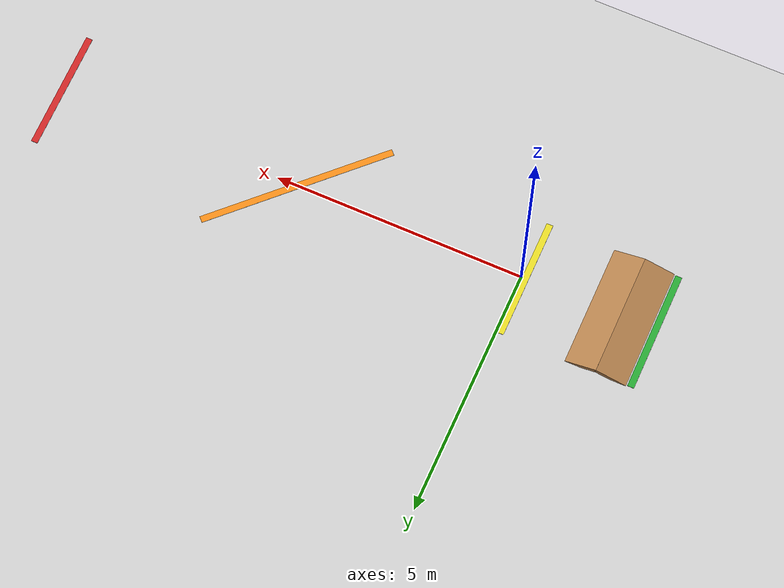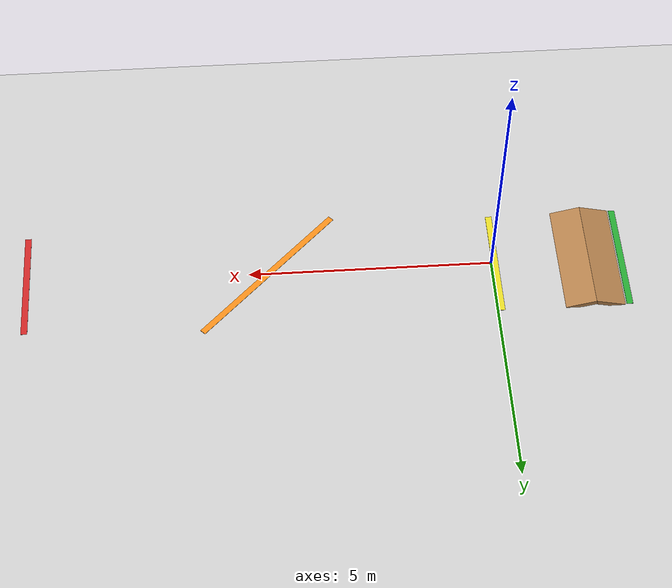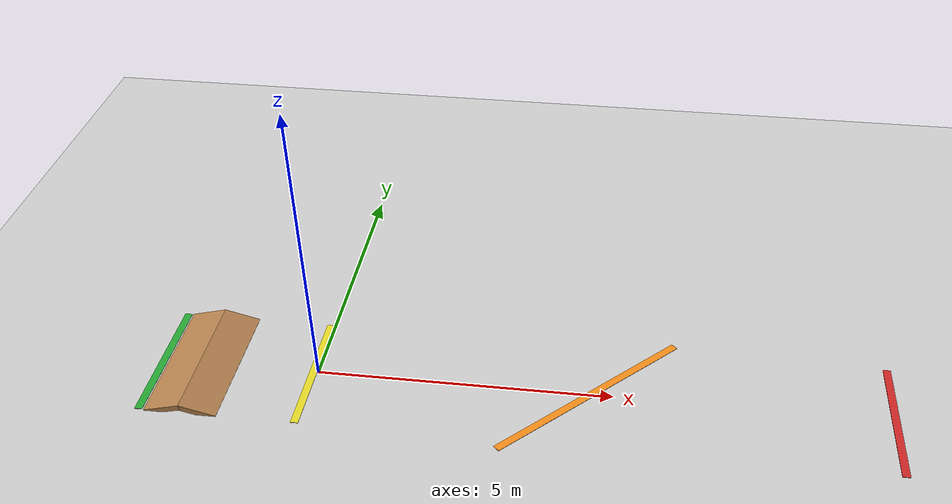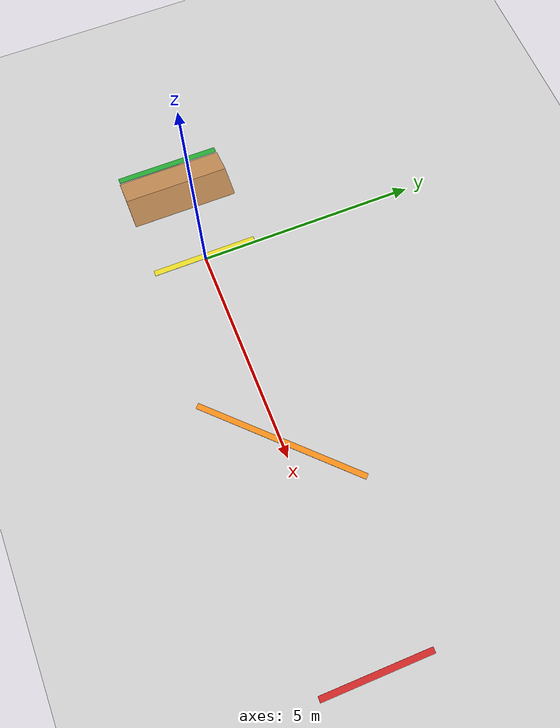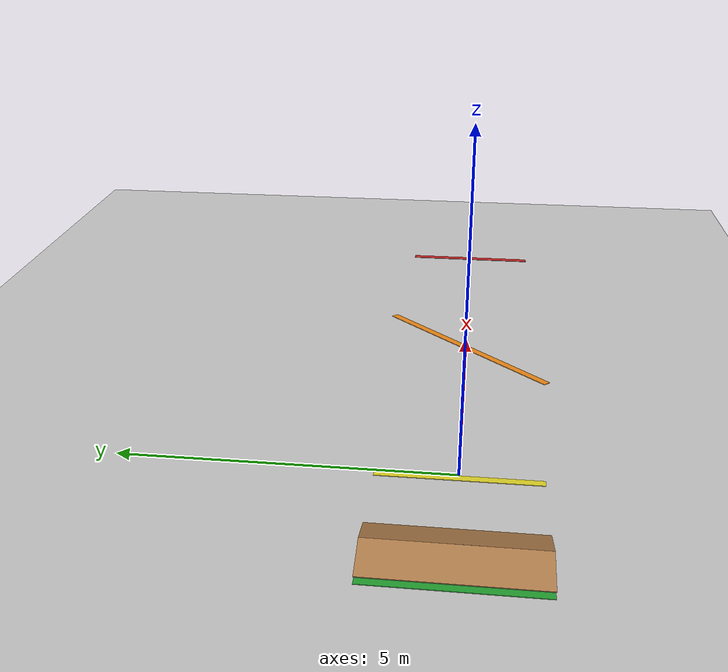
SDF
<sdf version="1.4">
 <world name="trials_task_2">
  <physics type="ode">
   <gravity>0 0 -9.81</gravity>
   <ode>
    <solver>
     <use_dynamic_moi_rescaling>true</use_dynamic_moi_rescaling>
     <type>quick</type>
     <iters>50</iters>
     <sor>1.4</sor>
    </solver>
    <constraints>
     <cfm>0.0</cfm>
     <erp>0.2</erp>
     <contact_max_correcting_vel>100.0</contact_max_correcting_vel>
     <contact_surface_layer>0.0</contact_surface_layer>
    </constraints>
   </ode>
   <real_time_update_rate>1000</real_time_update_rate>
   <max_step_size>0.001</max_step_size>
  </physics>
  <physics name="preset_1" type="ode">
   <gravity>0 0 -9.81</gravity>
   <ode>
    <solver><type>quick</type><iters>50</iters><sor>1.0</sor></solver>
    <constraints>
     <cfm>0.0</cfm>
     <erp>0.2</erp>
     <contact_max_correcting_vel>100.0</contact_max_correcting_vel>
     <contact_surface_layer>0.0</contact_surface_layer>
    </constraints>
   </ode>
   <real_time_update_rate>2000</real_time_update_rate>
   <max_step_size>0.0005</max_step_size>
  </physics>
  <physics name="preset_2" type="ode">
   <gravity>0 0 -9.81</gravity>
   <ode>
    <solver><type>quick</type><iters>200</iters><sor>1.0</sor></solver>
    <constraints>
     <cfm>0.0</cfm>
     <erp>0.2</erp>
     <contact_max_correcting_vel>100.0</contact_max_correcting_vel>
     <contact_surface_layer>0.0</contact_surface_layer>
    </constraints>
   </ode>
   <real_time_update_rate>2000</real_time_update_rate>
   <max_step_size>0.0005</max_step_size>
  </physics>
  <include><uri>model://sun</uri></include>
  <include><uri>model://ground_plane</uri></include>
  <model name="green_tape">
   <static>true</static>
   <pose>-2.7 0 0 0 0 0</pose>
   <link name="link">
    <visual name="visual">
     <geometry><box><size>0.13 2.41 0.01</size></box></geometry>
     <material><script><name>Gazebo/Green</name></script></material>
    </visual>
   </link>
  </model>
  <model name="ramp_0">
   <pose>-2 0 0 0 0 0</pose>
   <static>true</static>
   <link name="link">
    <collision name="incline_collision">
     <pose>0.29175 0 0.0335 0 0.261799364 0</pose>
     <geometry><box><size>.631104356 2.43839619 .1</size></box></geometry>
    </collision>
    <visual name="incline_visual">
     <pose>0.29175 0 0.0335 0 0.261799364 0</pose>
     <geometry><box><size>.631104356 2.43839619 .1</size></box></geometry>
     <material><script><name>Gazebo/WoodFloor</name></script></material>
    </visual>
    <collision name="decline_collision">
     <pose>-0.29175 0 0.0335 0 -0.261799364 0</pose>
     <geometry><box><size>.631104356 2.43839619 .1</size></box></geometry>
    </collision>
    <visual name="decline_visual">
     <pose>-0.29175 0 0.0335 0 -0.261799364 0</pose>
     <geometry><box><size>.631104356 2.43839619 .1</size></box></geometry>
     <material><script><name>Gazebo/WoodFloor</name></script></material>
    </visual>
   </link>
  </model>
  <model name="yellow_tape">
   <static>true</static>
   <pose>-0.087 0 0 0 0 0</pose>
   <link name="link">
    <visual name="visual">
     <geometry><box><size>0.13 2.41 0.01</size></box></geometry>
     <material><script><name>Gazebo/Yellow</name></script></material>
    </visual>
   </link>
  </model>
  <model name="orange_tape">
   <static>true</static>
   <pose>4.6 0 0 0 0 -0.785397</pose>
   <link name="link">
    <visual name="visual">
     <geometry><box><size>0.13 3.89146 0.01</size></box></geometry>
     <material><script><name>Gazebo/Orange</name></script></material>
    </visual>
   </link>
  </model>
  <model name="red_tape">
   <static>true</static>
   <pose>9.56 0 0 0 0 0</pose>
   <link name="link">
    <visual name="visual">
     <geometry><box><size>0.13 2.41 0.01</size></box></geometry>
     <material><script><name>Gazebo/Red</name></script></material>
    </visual>
   </link>
  </model>
  <plugin filename="libVRCPlugin.so" name="vrc_plugin">
   <atlas><model_name>atlas</model_name><pin_link>utorso</pin_link></atlas>
   <drc_vehicle>
    <model_name>drc_vehicle_xp900</model_name>
    <seat_link>polaris_ranger_xp900::chassis</seat_link>
   </drc_vehicle>
   <drc_fire_hose>
    <fire_hose_model>fire_hose</fire_hose_model>
    <coupling_link>coupling</coupling_link>
    <standpipe_model>standpipe</standpipe_model>
    <spout_link>standpipe</spout_link>
    <thread_pitch>-1000</thread_pitch>
    <coupling_relative_pose>1.17038e-05 -0.125623 0.35 -0.0412152 -1.57078 1.61199</coupling_relative_pose>
   </drc_fire_hose>
  </plugin>
 </world>
</sdf>
